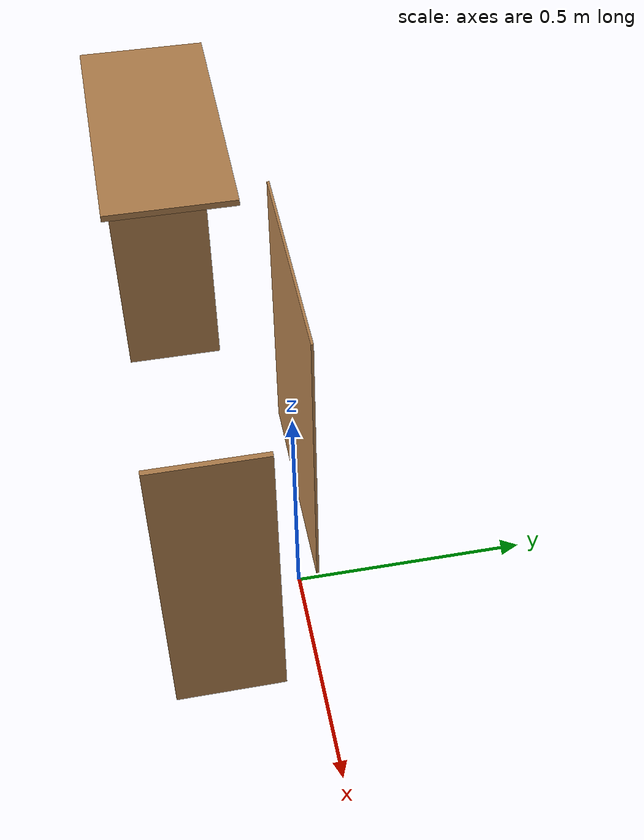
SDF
<?xml version="1.0" ?>
<sdf version="1.4">
  <model name="bookshelf">
    <static>true</static>
    <link name="link">
      <inertial>
        <mass>1.0</mass>
      </inertial>
      <collision name="back">
        <pose>0 0.005 0.6 0 0 0</pose>
        <geometry>
          <box>
            <size>0.45 0.005 0.6</size>
          </box>
        </geometry>
      </collision>
      <visual name="visual1">
        <pose>0 0.005 0.6 0 0 0</pose>
        <geometry>
          <box>
            <size>0.45 0.005 0.6</size>
          </box>
        </geometry>
        <material>
          <script>
            <uri>file://media/materials/scripts/gazebo.material</uri>
            <name>Gazebo/Wood</name>
          </script>
        </material>
      </visual>
      <collision name="left_side">
        <pose>0.45 -0.195 0.6 0 0 0</pose>
        <geometry>
          <box>
            <size>0.01 0.2 0.6</size>
          </box>
        </geometry>
      </collision>
      <visual name="visual2">
        <pose>0.45 -0.195 0.6 0 0 0</pose>
        <geometry>
          <box>
            <size>0.01 0.2 0.6</size>
          </box>
        </geometry>
        <material>
          <script>
            <uri>file://media/materials/scripts/gazebo.material</uri>
            <name>Gazebo/Wood</name>
          </script>
        </material>
      </visual>
      <collision name="right_side">
        <pose>-0.45 -0.195 0.6 0 0 0</pose>
        <geometry>
          <box>
            <size>0.01 0.2 0.6</size>
          </box>
        </geometry>
      </collision>
      <visual name="visual3">
        <pose>-0.45 -0.195 0.6 0 0 0</pose>
        <geometry>
          <box>
            <size>0.01 0.2 0.6</size>
          </box>
        </geometry>
        <material>
          <script>
            <uri>file://media/materials/scripts/gazebo.material</uri>
            <name>Gazebo/Wood</name>
          </script>
        </material>
      </visual>
      <collision name="bottom">
        <pose>0 -0.195 0.03 0 0 0</pose>
        <geometry>
          <box>
            <size>0.44 0.2 0.03</size>
          </box>
        </geometry>
      </collision>
      <visual name="visual4">
        <pose>0 -0.195 0.03 0 0 0</pose>
        <geometry>
          <box>
            <size>0.44 0.2 0.03</size>
          </box>
        </geometry>
        <material>
          <script>
            <uri>file://media/materials/scripts/gazebo.material</uri>
            <name>Gazebo/Wood</name>
          </script>
        </material>
      </visual>
      <collision name="top">
        <pose>0 -0.195 1.19 0 0 0</pose>
        <geometry>
          <box>
            <size>0.44 0.2 0.01</size>
          </box>
        </geometry>
      </collision>
      <visual name="visual5">
        <pose>0 -0.195 1.19 0 0 0</pose>
        <geometry>
          <box>
            <size>0.44 0.2 0.01</size>
          </box>
        </geometry>
        <material>
          <script>
            <uri>file://media/materials/scripts/gazebo.material</uri>
            <name>Gazebo/Wood</name>
          </script>
        </material>
      </visual>
    </link>
  </model>
</sdf>
